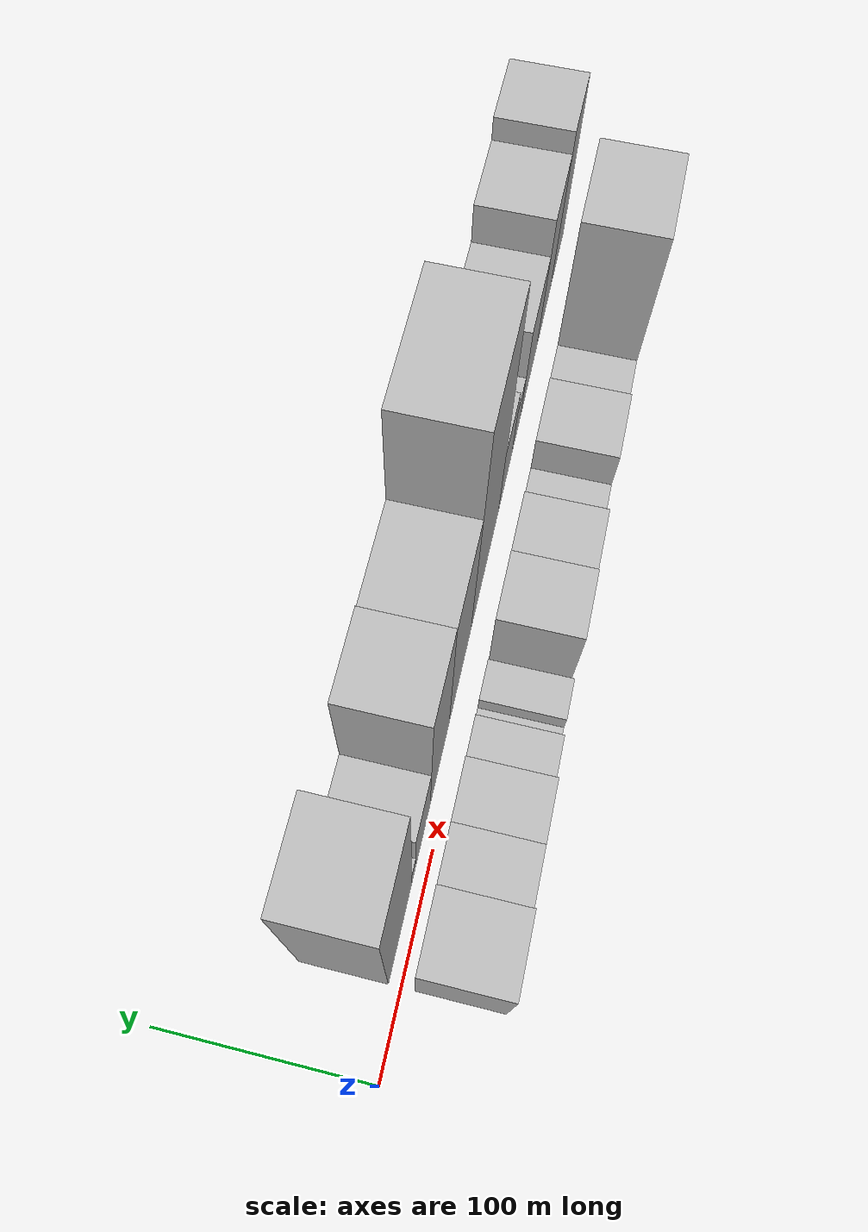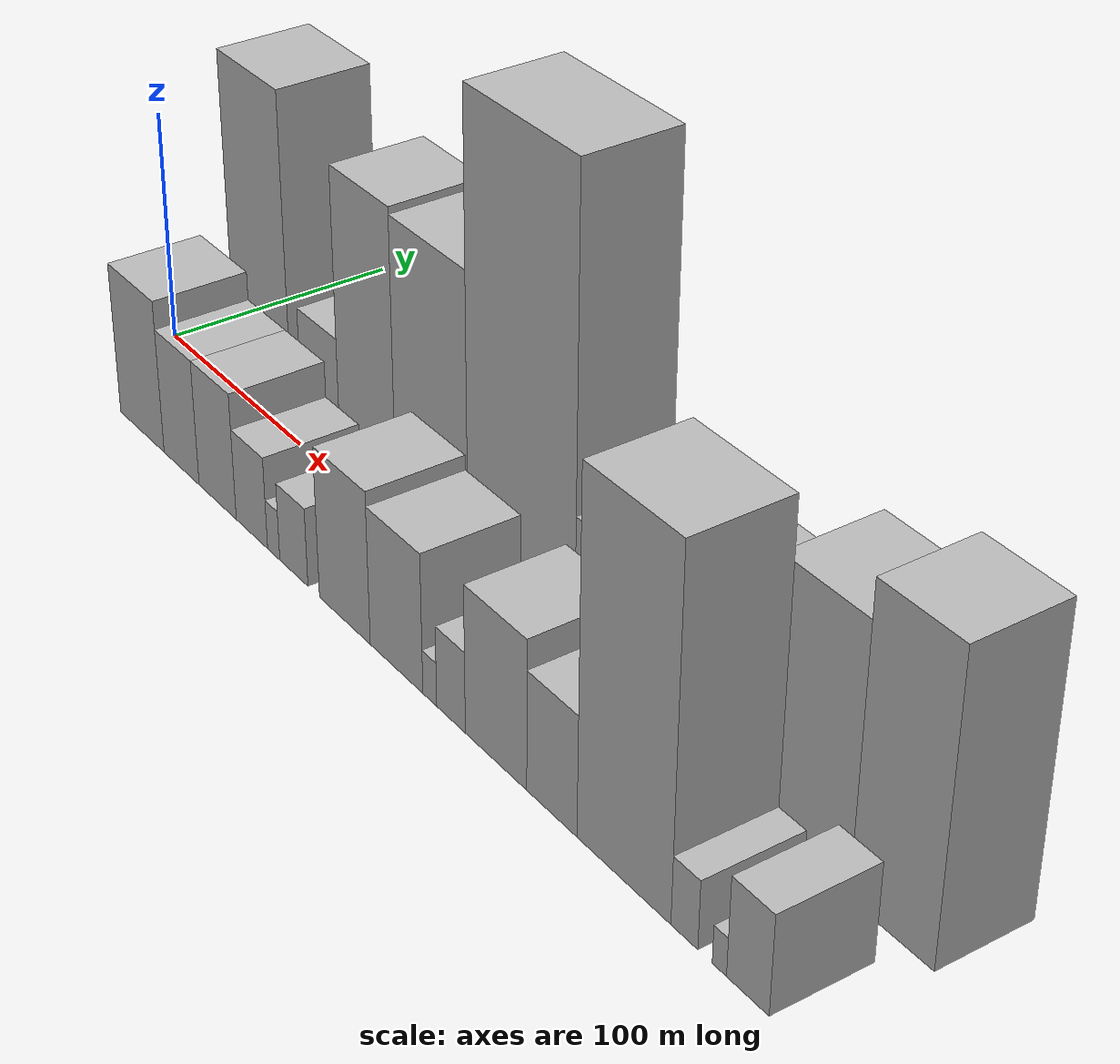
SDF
<sdf version="1.6">
 <world name="default">
  <scene>
   <sky><clouds><speed>12</speed></clouds></sky>
   <ambient>0.4 0.4 0.4 1</ambient>
   <background>0.7 0.7 0.7 1</background>
   <shadows>1</shadows>
  </scene>
  <gravity>0 0 -9.8066</gravity>
  <magnetic_field>6e-06 2.3e-05 -4.2e-05</magnetic_field>
  <physics default="0" name="default_physics" type="ode">
   <ode>
    <solver>
     <type>quick</type>
     <iters>10</iters>
     <sor>1.0</sor>
     <use_dynamic_moi_rescaling>0</use_dynamic_moi_rescaling>
    </solver>
    <constraints>
     <cfm>0</cfm>
     <erp>0.2</erp>
     <contact_max_correcting_vel>100</contact_max_correcting_vel>
     <contact_surface_layer>0.001</contact_surface_layer>
    </constraints>
   </ode>
   <max_step_size>0.004</max_step_size>
   <real_time_factor>1</real_time_factor>
   <real_time_update_rate>250</real_time_update_rate>
  </physics>
  <light name="sun" type="directional">
   <pose>0 0 10 0 0 0</pose>
   <diffuse>0.8 0.8 0.8 1</diffuse>
   <specular>0.2 0.2 0.2 1</specular>
   <attenuation>
    <range>1000</range>
    <constant>0.9</constant>
    <linear>0.01</linear>
    <quadratic>0.001</quadratic>
   </attenuation>
   <direction>-0.5 0.1 -0.9</direction>
  </light>
  <model name="building_1">
   <static>1</static>
   <pose>61.8487 26.0000 0 0.000000 0.000000 1.570796</pose>
   <link name="link">
    <pose>0 0 70.50 0 0 0</pose>
    <collision name="collision"><geometry><box><size>40.0000 43.6974 141.0000</size></box></geometry></collision>
    <visual name="visual">
     <cast_shadows>0</cast_shadows>
     <geometry><box><size>40.0000 43.6974 141.0000</size></box></geometry>
     <material>
      <script>
       <uri>model://HANNAS_wall/materials/scripts</uri>
       <uri>model://HANNAS_wall/materials/textures</uri>
       <name>vrc/HANNAS_wall</name>
      </script>
     </material>
    </visual>
   </link>
  </model>
  <model name="building_2">
   <static>1</static>
   <pose>87.5309 26.0000 0 0.000000 0.000000 1.570796</pose>
   <link name="link">
    <pose>0 0 9.00 0 0 0</pose>
    <collision name="collision"><geometry><box><size>40.0000 7.6669 18.0000</size></box></geometry></collision>
    <visual name="visual">
     <cast_shadows>0</cast_shadows>
     <geometry><box><size>40.0000 7.6669 18.0000</size></box></geometry>
     <material>
      <script>
       <uri>model://HANNAS_wall/materials/scripts</uri>
       <uri>model://HANNAS_wall/materials/textures</uri>
       <name>vrc/HANNAS_wall</name>
      </script>
     </material>
    </visual>
   </link>
  </model>
  <model name="building_3">
   <static>1</static>
   <pose>105.5641 26.0000 0 0.000000 0.000000 1.570796</pose>
   <link name="link">
    <pose>0 0 27.00 0 0 0</pose>
    <collision name="collision"><geometry><box><size>40.0000 28.3994 54.0000</size></box></geometry></collision>
    <visual name="visual">
     <cast_shadows>0</cast_shadows>
     <geometry><box><size>40.0000 28.3994 54.0000</size></box></geometry>
     <material>
      <script>
       <uri>model://HANNAS_wall/materials/scripts</uri>
       <uri>model://HANNAS_wall/materials/textures</uri>
       <name>vrc/HANNAS_wall</name>
      </script>
     </material>
    </visual>
   </link>
  </model>
  <model name="building_4">
   <static>1</static>
   <pose>139.5477 26.0000 0 0.000000 0.000000 1.570796</pose>
   <link name="link">
    <pose>0 0 63.00 0 0 0</pose>
    <collision name="collision"><geometry><box><size>40.0000 39.5677 126.0000</size></box></geometry></collision>
    <visual name="visual">
     <cast_shadows>0</cast_shadows>
     <geometry><box><size>40.0000 39.5677 126.0000</size></box></geometry>
     <material>
      <script>
       <uri>model://HANNAS_wall/materials/scripts</uri>
       <uri>model://HANNAS_wall/materials/textures</uri>
       <name>vrc/HANNAS_wall</name>
      </script>
     </material>
    </visual>
   </link>
  </model>
  <model name="building_5">
   <static>1</static>
   <pose>183.4390 26.0000 0 0.000000 0.000000 1.570796</pose>
   <link name="link">
    <pose>0 0 61.50 0 0 0</pose>
    <collision name="collision"><geometry><box><size>40.0000 48.2150 123.0000</size></box></geometry></collision>
    <visual name="visual">
     <cast_shadows>0</cast_shadows>
     <geometry><box><size>40.0000 48.2150 123.0000</size></box></geometry>
     <material>
      <script>
       <uri>model://HANNAS_wall/materials/scripts</uri>
       <uri>model://HANNAS_wall/materials/textures</uri>
       <name>vrc/HANNAS_wall</name>
      </script>
     </material>
    </visual>
   </link>
  </model>
  <model name="building_6">
   <static>1</static>
   <pose>240.3508 26.0000 0 0.000000 0.000000 1.570796</pose>
   <link name="link">
    <pose>0 0 96.00 0 0 0</pose>
    <collision name="collision"><geometry><box><size>40.0000 65.6086 192.0000</size></box></geometry></collision>
    <visual name="visual">
     <cast_shadows>0</cast_shadows>
     <geometry><box><size>40.0000 65.6086 192.0000</size></box></geometry>
     <material>
      <script>
       <uri>model://HANNAS_wall/materials/scripts</uri>
       <uri>model://HANNAS_wall/materials/textures</uri>
       <name>vrc/HANNAS_wall</name>
      </script>
     </material>
    </visual>
   </link>
  </model>
  <model name="building_7">
   <static>1</static>
   <pose>290.8284 26.0000 0 0.000000 0.000000 1.570796</pose>
   <link name="link">
    <pose>0 0 30.00 0 0 0</pose>
    <collision name="collision"><geometry><box><size>40.0000 35.3465 60.0000</size></box></geometry></collision>
    <visual name="visual">
     <cast_shadows>0</cast_shadows>
     <geometry><box><size>40.0000 35.3465 60.0000</size></box></geometry>
     <material>
      <script>
       <uri>model://HANNAS_wall/materials/scripts</uri>
       <uri>model://HANNAS_wall/materials/textures</uri>
       <name>vrc/HANNAS_wall</name>
      </script>
     </material>
    </visual>
   </link>
  </model>
  <model name="building_8">
   <static>1</static>
   <pose>319.6880 26.0000 0 0.000000 0.000000 1.570796</pose>
   <link name="link">
    <pose>0 0 19.50 0 0 0</pose>
    <collision name="collision"><geometry><box><size>40.0000 22.3727 39.0000</size></box></geometry></collision>
    <visual name="visual">
     <cast_shadows>0</cast_shadows>
     <geometry><box><size>40.0000 22.3727 39.0000</size></box></geometry>
     <material>
      <script>
       <uri>model://HANNAS_wall/materials/scripts</uri>
       <uri>model://HANNAS_wall/materials/textures</uri>
       <name>vrc/HANNAS_wall</name>
      </script>
     </material>
    </visual>
   </link>
  </model>
  <model name="building_9">
   <static>1</static>
   <pose>353.8816 26.0000 0 0.000000 0.000000 1.570796</pose>
   <link name="link">
    <pose>0 0 39.00 0 0 0</pose>
    <collision name="collision"><geometry><box><size>40.0000 46.0145 78.0000</size></box></geometry></collision>
    <visual name="visual">
     <cast_shadows>0</cast_shadows>
     <geometry><box><size>40.0000 46.0145 78.0000</size></box></geometry>
     <material>
      <script>
       <uri>model://HANNAS_wall/materials/scripts</uri>
       <uri>model://HANNAS_wall/materials/textures</uri>
       <name>vrc/HANNAS_wall</name>
      </script>
     </material>
    </visual>
   </link>
  </model>
  <model name="building_10">
   <static>1</static>
   <pose>397.5368 26.0000 0 0.000000 0.000000 1.570796</pose>
   <link name="link">
    <pose>0 0 52.50 0 0 0</pose>
    <collision name="collision"><geometry><box><size>40.0000 41.2959 105.0000</size></box></geometry></collision>
    <visual name="visual">
     <cast_shadows>0</cast_shadows>
     <geometry><box><size>40.0000 41.2959 105.0000</size></box></geometry>
     <material>
      <script>
       <uri>model://HANNAS_wall/materials/scripts</uri>
       <uri>model://HANNAS_wall/materials/textures</uri>
       <name>vrc/HANNAS_wall</name>
      </script>
     </material>
    </visual>
   </link>
  </model>
  <model name="building_11">
   <static>1</static>
   <pose>437.6232 26.0000 0 0.000000 0.000000 1.570796</pose>
   <link name="link">
    <pose>0 0 60.00 0 0 0</pose>
    <collision name="collision"><geometry><box><size>40.0000 38.8768 120.0000</size></box></geometry></collision>
    <visual name="visual">
     <cast_shadows>0</cast_shadows>
     <geometry><box><size>40.0000 38.8768 120.0000</size></box></geometry>
     <material>
      <script>
       <uri>model://HANNAS_wall/materials/scripts</uri>
       <uri>model://HANNAS_wall/materials/textures</uri>
       <name>vrc/HANNAS_wall</name>
      </script>
     </material>
    </visual>
   </link>
  </model>
  <model name="building_12">
   <static>1</static>
   <pose>57.7992 -26.0000 0 0.000000 0.000000 1.570796</pose>
   <link name="link">
    <pose>0 0 33.00 0 0 0</pose>
    <collision name="collision"><geometry><box><size>40.0000 35.5984 66.0000</size></box></geometry></collision>
    <visual name="visual">
     <cast_shadows>0</cast_shadows>
     <geometry><box><size>40.0000 35.5984 66.0000</size></box></geometry>
     <material>
      <script>
       <uri>model://HANNAS_wall/materials/scripts</uri>
       <uri>model://HANNAS_wall/materials/textures</uri>
       <name>vrc/HANNAS_wall</name>
      </script>
     </material>
    </visual>
   </link>
  </model>
  <model name="building_13">
   <static>1</static>
   <pose>89.3924 -26.0000 0 0.000000 0.000000 1.570796</pose>
   <link name="link">
    <pose>0 0 27.00 0 0 0</pose>
    <collision name="collision"><geometry><box><size>40.0000 27.5880 54.0000</size></box></geometry></collision>
    <visual name="visual">
     <cast_shadows>0</cast_shadows>
     <geometry><box><size>40.0000 27.5880 54.0000</size></box></geometry>
     <material>
      <script>
       <uri>model://HANNAS_wall/materials/scripts</uri>
       <uri>model://HANNAS_wall/materials/textures</uri>
       <name>vrc/HANNAS_wall</name>
      </script>
     </material>
    </visual>
   </link>
  </model>
  <model name="building_14">
   <static>1</static>
   <pose>117.2916 -26.0000 0 0.000000 0.000000 1.570796</pose>
   <link name="link">
    <pose>0 0 27.00 0 0 0</pose>
    <collision name="collision"><geometry><box><size>40.0000 28.2104 54.0000</size></box></geometry></collision>
    <visual name="visual">
     <cast_shadows>0</cast_shadows>
     <geometry><box><size>40.0000 28.2104 54.0000</size></box></geometry>
     <material>
      <script>
       <uri>model://HANNAS_wall/materials/scripts</uri>
       <uri>model://HANNAS_wall/materials/textures</uri>
       <name>vrc/HANNAS_wall</name>
      </script>
     </material>
    </visual>
   </link>
  </model>
  <model name="building_15">
   <static>1</static>
   <pose>142.8906 -26.0000 0 0.000000 0.000000 1.570796</pose>
   <link name="link">
    <pose>0 0 19.50 0 0 0</pose>
    <collision name="collision"><geometry><box><size>40.0000 22.9876 39.0000</size></box></geometry></collision>
    <visual name="visual">
     <cast_shadows>0</cast_shadows>
     <geometry><box><size>40.0000 22.9876 39.0000</size></box></geometry>
     <material>
      <script>
       <uri>model://HANNAS_wall/materials/scripts</uri>
       <uri>model://HANNAS_wall/materials/textures</uri>
       <name>vrc/HANNAS_wall</name>
      </script>
     </material>
    </visual>
   </link>
  </model>
  <model name="building_16">
   <static>1</static>
   <pose>158.7467 -26.0000 0 0.000000 0.000000 1.570796</pose>
   <link name="link">
    <pose>0 0 10.50 0 0 0</pose>
    <collision name="collision"><geometry><box><size>40.0000 8.7246 21.0000</size></box></geometry></collision>
    <visual name="visual">
     <cast_shadows>0</cast_shadows>
     <geometry><box><size>40.0000 8.7246 21.0000</size></box></geometry>
     <material>
      <script>
       <uri>model://HANNAS_wall/materials/scripts</uri>
       <uri>model://HANNAS_wall/materials/textures</uri>
       <name>vrc/HANNAS_wall</name>
      </script>
     </material>
    </visual>
   </link>
  </model>
  <model name="building_17">
   <static>1</static>
   <pose>172.9973 -26.0000 0 0.000000 0.000000 1.570796</pose>
   <link name="link">
    <pose>0 0 16.50 0 0 0</pose>
    <collision name="collision"><geometry><box><size>40.0000 19.7766 33.0000</size></box></geometry></collision>
    <visual name="visual">
     <cast_shadows>0</cast_shadows>
     <geometry><box><size>40.0000 19.7766 33.0000</size></box></geometry>
     <material>
      <script>
       <uri>model://HANNAS_wall/materials/scripts</uri>
       <uri>model://HANNAS_wall/materials/textures</uri>
       <name>vrc/HANNAS_wall</name>
      </script>
     </material>
    </visual>
   </link>
  </model>
  <model name="building_18">
   <static>1</static>
   <pose>207.8736 -26.0000 0 0.000000 0.000000 1.570796</pose>
   <link name="link">
    <pose>0 0 31.50 0 0 0</pose>
    <collision name="collision"><geometry><box><size>40.0000 33.9762 63.0000</size></box></geometry></collision>
    <visual name="visual">
     <cast_shadows>0</cast_shadows>
     <geometry><box><size>40.0000 33.9762 63.0000</size></box></geometry>
     <material>
      <script>
       <uri>model://HANNAS_wall/materials/scripts</uri>
       <uri>model://HANNAS_wall/materials/textures</uri>
       <name>vrc/HANNAS_wall</name>
      </script>
     </material>
    </visual>
   </link>
  </model>
  <model name="building_19">
   <static>1</static>
   <pose>241.6289 -26.0000 0 0.000000 0.000000 1.570796</pose>
   <link name="link">
    <pose>0 0 28.50 0 0 0</pose>
    <collision name="collision"><geometry><box><size>40.0000 33.5344 57.0000</size></box></geometry></collision>
    <visual name="visual">
     <cast_shadows>0</cast_shadows>
     <geometry><box><size>40.0000 33.5344 57.0000</size></box></geometry>
     <material>
      <script>
       <uri>model://HANNAS_wall/materials/scripts</uri>
       <uri>model://HANNAS_wall/materials/textures</uri>
       <name>vrc/HANNAS_wall</name>
      </script>
     </material>
    </visual>
   </link>
  </model>
  <model name="building_20">
   <static>1</static>
   <pose>262.6696 -26.0000 0 0.000000 0.000000 1.570796</pose>
   <link name="link">
    <pose>0 0 9.00 0 0 0</pose>
    <collision name="collision"><geometry><box><size>40.0000 8.5468 18.0000</size></box></geometry></collision>
    <visual name="visual">
     <cast_shadows>0</cast_shadows>
     <geometry><box><size>40.0000 8.5468 18.0000</size></box></geometry>
     <material>
      <script>
       <uri>model://HANNAS_wall/materials/scripts</uri>
       <uri>model://HANNAS_wall/materials/textures</uri>
       <name>vrc/HANNAS_wall</name>
      </script>
     </material>
    </visual>
   </link>
  </model>
  <model name="building_21">
   <static>1</static>
   <pose>275.6349 -26.0000 0 0.000000 0.000000 1.570796</pose>
   <link name="link">
    <pose>0 0 16.50 0 0 0</pose>
    <collision name="collision"><geometry><box><size>40.0000 17.3839 33.0000</size></box></geometry></collision>
    <visual name="visual">
     <cast_shadows>0</cast_shadows>
     <geometry><box><size>40.0000 17.3839 33.0000</size></box></geometry>
     <material>
      <script>
       <uri>model://HANNAS_wall/materials/scripts</uri>
       <uri>model://HANNAS_wall/materials/textures</uri>
       <name>vrc/HANNAS_wall</name>
      </script>
     </material>
    </visual>
   </link>
  </model>
  <model name="building_22">
   <static>1</static>
   <pose>302.1849 -26.0000 0 0.000000 0.000000 1.570796</pose>
   <link name="link">
    <pose>0 0 30.00 0 0 0</pose>
    <collision name="collision"><geometry><box><size>40.0000 35.7162 60.0000</size></box></geometry></collision>
    <visual name="visual">
     <cast_shadows>0</cast_shadows>
     <geometry><box><size>40.0000 35.7162 60.0000</size></box></geometry>
     <material>
      <script>
       <uri>model://HANNAS_wall/materials/scripts</uri>
       <uri>model://HANNAS_wall/materials/textures</uri>
       <name>vrc/HANNAS_wall</name>
      </script>
     </material>
    </visual>
   </link>
  </model>
  <model name="building_23">
   <static>1</static>
   <pose>333.9489 -26.0000 0 0.000000 0.000000 1.570796</pose>
   <link name="link">
    <pose>0 0 24.00 0 0 0</pose>
    <collision name="collision"><geometry><box><size>40.0000 27.8118 48.0000</size></box></geometry></collision>
    <visual name="visual">
     <cast_shadows>0</cast_shadows>
     <geometry><box><size>40.0000 27.8118 48.0000</size></box></geometry>
     <material>
      <script>
       <uri>model://HANNAS_wall/materials/scripts</uri>
       <uri>model://HANNAS_wall/materials/textures</uri>
       <name>vrc/HANNAS_wall</name>
      </script>
     </material>
    </visual>
   </link>
  </model>
  <model name="building_24">
   <static>1</static>
   <pose>372.3172 -26.0000 0 0.000000 0.000000 1.570796</pose>
   <link name="link">
    <pose>0 0 70.50 0 0 0</pose>
    <collision name="collision"><geometry><box><size>40.0000 48.9248 141.0000</size></box></geometry></collision>
    <visual name="visual">
     <cast_shadows>0</cast_shadows>
     <geometry><box><size>40.0000 48.9248 141.0000</size></box></geometry>
     <material>
      <script>
       <uri>model://HANNAS_wall/materials/scripts</uri>
       <uri>model://HANNAS_wall/materials/textures</uri>
       <name>vrc/HANNAS_wall</name>
      </script>
     </material>
    </visual>
   </link>
  </model>
  <model name="building_25">
   <static>1</static>
   <pose>403.4434 -26.0000 0 0.000000 0.000000 1.570796</pose>
   <link name="link">
    <pose>0 0 13.50 0 0 0</pose>
    <collision name="collision"><geometry><box><size>40.0000 13.3276 27.0000</size></box></geometry></collision>
    <visual name="visual">
     <cast_shadows>0</cast_shadows>
     <geometry><box><size>40.0000 13.3276 27.0000</size></box></geometry>
     <material>
      <script>
       <uri>model://HANNAS_wall/materials/scripts</uri>
       <uri>model://HANNAS_wall/materials/textures</uri>
       <name>vrc/HANNAS_wall</name>
      </script>
     </material>
    </visual>
   </link>
  </model>
  <model name="building_26">
   <static>1</static>
   <pose>420.5434 -26.0000 0 0.000000 0.000000 1.570796</pose>
   <link name="link">
    <pose>0 0 7.50 0 0 0</pose>
    <collision name="collision"><geometry><box><size>40.0000 6.8724 15.0000</size></box></geometry></collision>
    <visual name="visual">
     <cast_shadows>0</cast_shadows>
     <geometry><box><size>40.0000 6.8724 15.0000</size></box></geometry>
     <material>
      <script>
       <uri>model://HANNAS_wall/materials/scripts</uri>
       <uri>model://HANNAS_wall/materials/textures</uri>
       <name>vrc/HANNAS_wall</name>
      </script>
     </material>
    </visual>
   </link>
  </model>
  <model name="building_27">
   <static>1</static>
   <pose>434.0222 -26.0000 0 0.000000 0.000000 1.570796</pose>
   <link name="link">
    <pose>0 0 19.50 0 0 0</pose>
    <collision name="collision"><geometry><box><size>40.0000 20.0852 39.0000</size></box></geometry></collision>
    <visual name="visual">
     <cast_shadows>0</cast_shadows>
     <geometry><box><size>40.0000 20.0852 39.0000</size></box></geometry>
     <material>
      <script>
       <uri>model://HANNAS_wall/materials/scripts</uri>
       <uri>model://HANNAS_wall/materials/textures</uri>
       <name>vrc/HANNAS_wall</name>
      </script>
     </material>
    </visual>
   </link>
  </model>
 </world>
</sdf>
